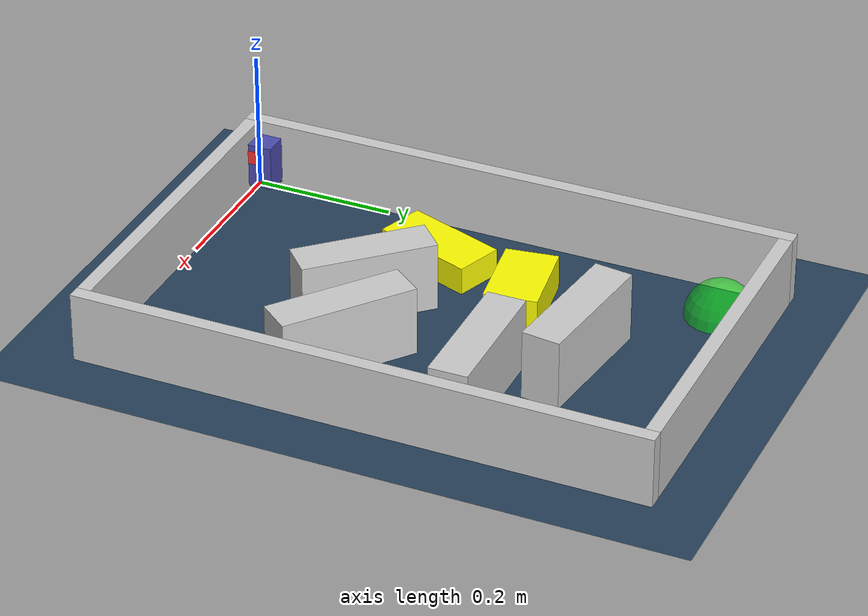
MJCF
<?xml version="1.0" ?>
<mujoco model="generated_environment">
  <option cone="elliptic" integrator="implicitfast" iterations="100" timestep="0.002"/>
  <default>
    <geom density="1"/>
  </default>
  <asset>
    <texture builtin="gradient" height="3072" rgb1="0.3 0.5 0.7" rgb2="0 0 0" type="skybox" width="512"/>
    <texture builtin="checker" height="300" mark="edge" markrgb="0.8 0.8 0.8" name="groundplane" rgb1="0.2 0.3 0.4" rgb2="0.1 0.2 0.3" type="2d" width="300"/>
    <material name="groundplane" reflectance="0.2" texrepeat="5 5" texture="groundplane" texuniform="true"/>
    <material name="robot" rgba="1.0 1.0 0.0 1.0"/>
  </asset>
  <include file="/home/dhruv/projects_dhruv/namo/namo_cpp/test_xml/little-car-modeling-package/assets/mjcf/little_car.xml"/>
  <worldbody>
    <light dir="0 0 -1" directional="true" pos="0 0 1.5"/>
    <geom condim="4" friction="0.5 0.005 0.001" material="groundplane" name="floor" size="0 0 0.05" type="plane"/>
    <body name="walls">
      <geom name="wall_1" condim="4" pos="-0.01 0.3875 0.05" friction="1 0.005 0.0001" rgba="0.800000011920929 0.800000011920929 0.800000011920929 1.0" size="0.01 0.40750000000000003 0.05" type="box"/>
      <geom name="wall_2" condim="4" pos="0.5 0.3875 0.05" friction="1 0.005 0.0001" rgba="0.800000011920929 0.800000011920929 0.800000011920929 1.0" size="0.01 0.40750000000000003 0.05" type="box"/>
      <geom name="wall_3" condim="4" pos="0.245 -0.01 0.05" friction="1 0.005 0.0001" rgba="0.800000011920929 0.800000011920929 0.800000011920929 1.0" size="0.245 0.01 0.05" type="box"/>
      <geom name="wall_4" condim="4" pos="0.245 0.785 0.05" friction="1 0.005 0.0001" rgba="0.800000011920929 0.800000011920929 0.800000011920929 1.0" size="0.245 0.01 0.05" type="box"/>
    </body>
    <body name="obstacle_1_movable">
      <geom name="obstacle_1_movable" condim="4" pos="0.09786780091036305 0.3225756552726528 0.02" quat="-0.9852816053479602 0 0 0.17093904809301602" friction="1 0.005 0.0001" rgba="1 1 0 1" size="0.035 0.075 0.02" type="box" mass="0.1"/>
      <joint type="free"/>
    </body>
    <body name="obstacle_2_movable">
      <geom name="obstacle_2_movable" condim="4" pos="0.15126289662585993 0.46684687640267386 0.025" quat="0.6532705435232969 0 0 0.7571245584213844" friction="1 0.005 0.0001" rgba="1 1 0 1" size="0.0375 0.06 0.025" type="box" mass="0.1"/>
      <joint type="free"/>
    </body>
    <body name="wall_5">
      <geom name="wall_5" condim="4" pos="0.25831772438092265 0.5910177005330314 0.05" quat="0.7494486626867988 0 0 0.6620624607972944" friction="1 0.005 0.0001" rgba="0.800000011920929 0.800000011920929 0.800000011920929 1.0" size="0.0275 0.0975 0.05" type="box"/>
    </body>
    <body name="wall_6">
      <geom name="wall_6" condim="4" pos="0.3717918028675386 0.3044082914267616 0.05" quat="-0.43759717812135135 0 0 0.8991711237023964" friction="1 0.005 0.0001" rgba="0.800000011920929 0.800000011920929 0.800000011920929 1.0" size="0.0275 0.0975 0.05" type="box"/>
    </body>
    <body name="wall_7">
      <geom name="wall_7" condim="4" pos="0.3779805905340649 0.5013725335922655 0.05" quat="0.7035147672036307 0 0 0.7106806401798358" friction="1 0.005 0.0001" rgba="0.800000011920929 0.800000011920929 0.800000011920929 1.0" size="0.0275 0.0975 0.05" type="box"/>
    </body>
    <body name="wall_8">
      <geom name="wall_8" condim="4" pos="0.24624115794645562 0.278845745336228 0.05" quat="0.39610496193164924 0 0 0.9182052380231376" friction="1 0.005 0.0001" rgba="0.800000011920929 0.800000011920929 0.800000011920929 1.0" size="0.095 0.0275 0.05" type="box"/>
    </body>
    <site name="goal" type="sphere" size="0.05 0.05 0.05" rgba="0 1 0 0.5" pos="0.060502 0.718623 0.0"/>
  </worldbody>
</mujoco>

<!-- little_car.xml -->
<mujoco model="little_car">
  <compiler angle="radian" autolimits="true"/>
  <default>
    <geom condim="4"/>
    <joint damping="0.01" armature="0.0001"/>
  </default>
  <worldbody>
    <body name="car" pos="0 0 0.010000">
      <freejoint name="car_freejoint"/>
      <inertial pos="0.000000 0 0.037500" mass="0.350000"
                diaginertia="0.000266 0.000266 0.000286"/>
      <geom name="front_chassis_collision" type="box" pos="0.017500 0 0.037500"
            size="0.017500 0.035000 0.032500"
            rgba="0.3 0.3 0.7 1"/>
      <geom name="rear_chassis_collision" type="box" pos="-0.017500 0 0.037500"
            size="0.017500 0.035000 0.032500"
            rgba="0.25 0.25 0.6 1"/>
      <geom name="front_marker" type="box" pos="0.034000 0 0.050500"
            size="0.002000 0.015000 0.010000"
            rgba="1.0 0.2 0.2 1" contype="0" conaffinity="0"/>

      <body name="rear_support_body" pos="-0.030000 0.000000 0.002500">
        <joint name="rear_caster_joint" type="ball" damping="0.0001"/>
        <inertial pos="0 0 0" mass="0.025000"
                  diaginertia="0.000001 0.000001 0.000001"/>
        <geom name="rear_support" type="sphere"
              pos="0 0 0"
              size="0.002500"
              friction="0.000000 0.000000 0.000000"
              rgba="0.7 0.1 0.1 1"/>
      </body>

      <body name="front_support_body" pos="0.030000 0.000000 0.002500">
        <joint name="front_caster_joint" type="ball" damping="0.0001"/>
        <inertial pos="0 0 0" mass="0.025000"
                  diaginertia="0.000001 0.000001 0.000001"/>
        <geom name="front_support" type="sphere"
              pos="0 0 0"
              size="0.002500"
              friction="0.000000 0.000000 0.000000"
              rgba="0.1 0.7 0.1 1"/>
      </body>

      <body name="left_wheel" pos="0.000000 0.034000 0.015000">
        <inertial pos="0 0 0" mass="0.050000"
                  diaginertia="0.000003 0.000006 0.000003"/>
        <joint name="left_wheel_joint" type="hinge" axis="0 1 0"/>
        <geom name="left_wheel_collision" type="cylinder" size="0.015000 0.000500"
              euler="1.57079632679 0 0" rgba="0.1 0.1 0.1 1"/>
      </body>

      <body name="right_wheel" pos="0.000000 -0.034000 0.015000">
        <inertial pos="0 0 0" mass="0.050000"
                  diaginertia="0.000003 0.000006 0.000003"/>
        <joint name="right_wheel_joint" type="hinge" axis="0 1 0"/>
        <geom name="right_wheel_collision" type="cylinder" size="0.015000 0.000500"
              euler="1.57079632679 0 0" rgba="0.1 0.1 0.1 1"/>
      </body>
    </body>
  </worldbody>
  <contact>
    <exclude body1="car" body2="left_wheel"/>
    <exclude body1="car" body2="right_wheel"/>
  </contact>
  <actuator>
    <velocity name="left_wheel_drive" joint="left_wheel_joint"
              ctrlrange="-25.000000 25.000000"
              kv="0.750000" forcerange="-0.500000 0.500000"/>
    <velocity name="right_wheel_drive" joint="right_wheel_joint"
              ctrlrange="-25.000000 25.000000"
              kv="0.750000" forcerange="-0.500000 0.500000"/>
  </actuator>
</mujoco>
